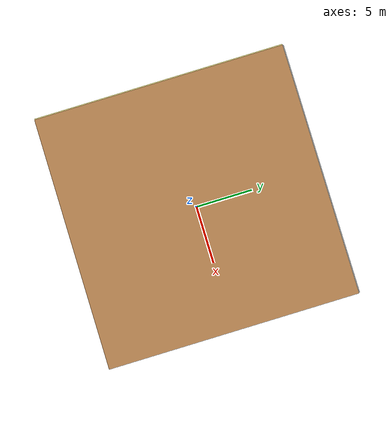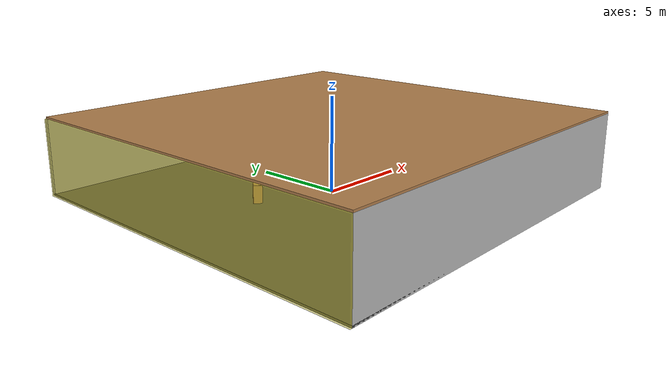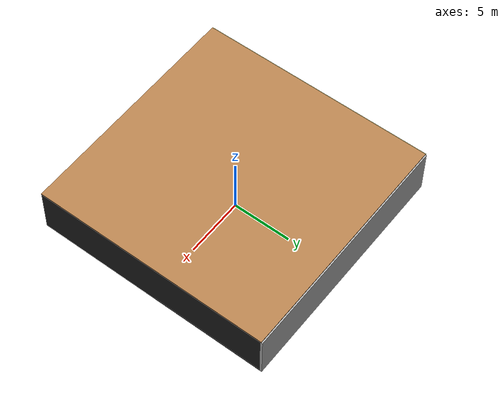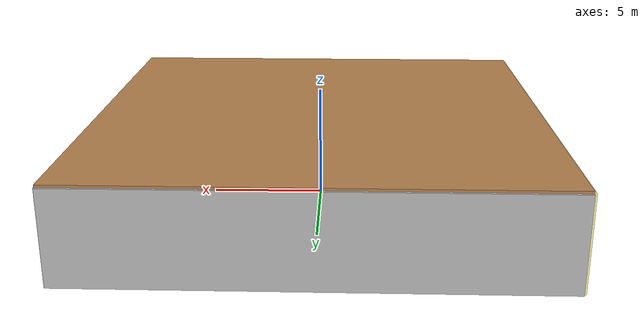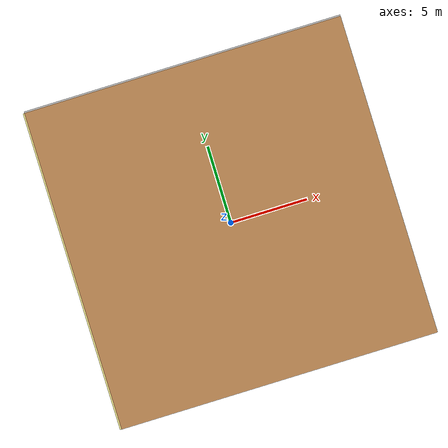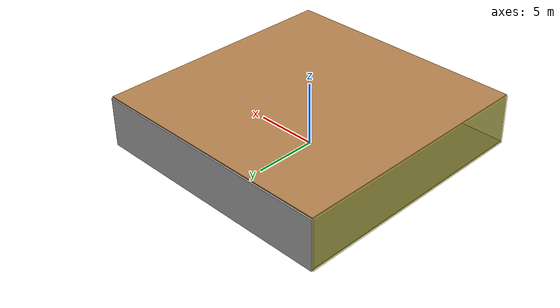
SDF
<sdf version="1.4">
 <world name="default">
  <physics type="ode">
   <max_step_size>0.001</max_step_size>
   <real_time_factor>1</real_time_factor>
   <real_time_update_rate>1000</real_time_update_rate>
   <gravity>0 0 -9.8</gravity>
  </physics>
  <scene><ambient>0.4 0.4 0.4 1</ambient><background>0.7 0.7 0.7 1</background><shadows>1</shadows></scene>
  <model name="Surrounding">
   <static>1</static>
   <link name="Ceiling">
    <collision name="Ceiling_Collision"><geometry><box><size>20 20 0.1</size></box></geometry></collision>
    <visual name="Ceiling_Visual">
     <geometry><box><size>20 20 0.1</size></box></geometry>
     <material>
      <script><uri>file://media/materials/scripts/gazebo.material</uri><name>Gazebo/Wood</name></script>
     </material>
    </visual>
    <pose>0 0 4.05 0 0 0</pose>
   </link>
   <link name="Wall_South">
    <collision name="Wall_South_Collision">
     <geometry><box><size>20 0 4</size></box></geometry>
     <pose>0 0 2 0 -0 0</pose>
    </collision>
    <visual name="Wall_South_Visual">
     <pose>0 0 2 0 -0 0</pose>
     <geometry><box><size>20 0 4</size></box></geometry>
     <material>
      <script><uri>file://media/materials/scripts/gazebo.material</uri><name>Gazebo/JointAnchor</name></script>
     </material>
    </visual>
    <velocity_decay><linear>0</linear><angular>0</angular></velocity_decay>
    <pose>0 -10 0 0 -0 0</pose>
   </link>
   <link name="Wall_East">
    <collision name="Wall_21_Collision">
     <geometry><box><size>20 0 4</size></box></geometry>
     <pose>0 0 2 0 -0 0</pose>
    </collision>
    <visual name="Wall_21_Visual">
     <pose>0 0 2 0 -0 0</pose>
     <geometry><box><size>20 0 4</size></box></geometry>
     <material>
      <script><uri>file://media/materials/scripts/gazebo.material</uri><name>Gazebo/Black</name></script>
     </material>
    </visual>
    <velocity_decay><linear>0</linear><angular>0</angular></velocity_decay>
    <pose>10 0 0 0 -0 1.5708</pose>
   </link>
   <link name="Wall_North">
    <collision name="Wall_22_Collision">
     <geometry><box><size>20 0.2 4</size></box></geometry>
     <pose>0 0 2 0 -0 0</pose>
    </collision>
    <visual name="Wall_22_Visual">
     <pose>0 0 2 0 -0 0</pose>
     <geometry><box><size>20 0.2 4</size></box></geometry>
     <material>
      <script><uri>file://media/materials/scripts/gazebo.material</uri><name>Gazebo/CloudySky</name></script>
     </material>
    </visual>
    <velocity_decay><linear>0</linear><angular>0</angular></velocity_decay>
    <pose>0 10 0 0 -0 0</pose>
   </link>
   <link name="Wall_West">
    <collision name="Wall_23_Collision">
     <geometry><box><size>20 0.2 4</size></box></geometry>
     <pose>0 0 2 0 -0 0</pose>
    </collision>
    <visual name="Wall_23_Visual">
     <pose>0 0 2 0 -0 0</pose>
     <geometry><box><size>20 0.2 4</size></box></geometry>
     <material>
      <script>
       <uri>file://media/materials/scripts/gazebo.material</uri>
       <name>Gazebo/YellowTransparent</name>
      </script>
     </material>
    </visual>
    <velocity_decay><linear>0</linear><angular>0</angular></velocity_decay>
    <pose>-10 0 0 0 0 -1.5708</pose>
   </link>
   <link name="Ground_link">
    <collision name="collision">
     <pose>0 0 .05 0 -0 0</pose>
     <geometry><box><size>20 20 0.1</size></box></geometry>
    </collision>
    <visual name="visual">
     <pose>0 0 .05 0 -0 0</pose>
     <geometry><box><size>20 20 0.1</size></box></geometry>
     <material>
      <script><uri>file://media/materials/scripts/gazebo.material</uri><name>Gazebo/DarkGrey</name></script>
     </material>
    </visual>
   </link>
   <static>1</static>
  </model>
  <spherical_coordinates>
   <surface_model>EARTH_WGS84</surface_model>
   <latitude_deg>0</latitude_deg>
   <longitude_deg>0</longitude_deg>
   <elevation>0</elevation>
   <heading_deg>0</heading_deg>
  </spherical_coordinates>
  <light name="lightball_0" type="diffuse">
   <diffuse>0.8 0.8 0.8 1</diffuse>
   <specular>0.2 0.2 0.2 1</specular>
   <attenuation>
    <range>100</range>
    <constant>0.7</constant>
    <linear>0.01</linear>
    <quadratic>0.001</quadratic>
   </attenuation>
   <direction>-0.5 0.1 -0.9</direction>
   <pose>-1.89008276957 -6.73406748685 1.27937783218 0 0 0</pose>
  </light>
  <light name="lightball_1" type="diffuse">
   <diffuse>0.8 0.8 0.8 1</diffuse>
   <specular>0.2 0.2 0.2 1</specular>
   <attenuation>
    <range>100</range>
    <constant>0.7</constant>
    <linear>0.01</linear>
    <quadratic>0.001</quadratic>
   </attenuation>
   <direction>-0.5 0.1 -0.9</direction>
   <pose>9.36551759505 -8.85146435884 3.43177662121 0 0 0</pose>
  </light>
  <light name="lightball_2" type="diffuse">
   <diffuse>0.8 0.8 0.8 1</diffuse>
   <specular>0.2 0.2 0.2 1</specular>
   <attenuation>
    <range>100</range>
    <constant>0.7</constant>
    <linear>0.01</linear>
    <quadratic>0.001</quadratic>
   </attenuation>
   <direction>-0.5 0.1 -0.9</direction>
   <pose>0.978074464316 -1.79662574742 1.26339397083 0 0 0</pose>
  </light>
  <light name="lightball_3" type="diffuse">
   <diffuse>0.8 0.8 0.8 1</diffuse>
   <specular>0.2 0.2 0.2 1</specular>
   <attenuation>
    <range>100</range>
    <constant>0.7</constant>
    <linear>0.01</linear>
    <quadratic>0.001</quadratic>
   </attenuation>
   <direction>-0.5 0.1 -0.9</direction>
   <pose>9.45170373861 1.54807877257 2.28567388362 0 0 0</pose>
  </light>
  <light name="lightball_4" type="diffuse">
   <diffuse>0.8 0.8 0.8 1</diffuse>
   <specular>0.2 0.2 0.2 1</specular>
   <attenuation>
    <range>100</range>
    <constant>0.7</constant>
    <linear>0.01</linear>
    <quadratic>0.001</quadratic>
   </attenuation>
   <direction>-0.5 0.1 -0.9</direction>
   <pose>3.18269772085 -2.76718053828 0.968673262499 0 0 0</pose>
  </light>
  <light name="lightball_5" type="diffuse">
   <diffuse>0.8 0.8 0.8 1</diffuse>
   <specular>0.2 0.2 0.2 1</specular>
   <attenuation>
    <range>100</range>
    <constant>0.7</constant>
    <linear>0.01</linear>
    <quadratic>0.001</quadratic>
   </attenuation>
   <direction>-0.5 0.1 -0.9</direction>
   <pose>-6.22816107207 9.92713232974 3.82777842407 0 0 0</pose>
  </light>
  <light name="lightball_6" type="diffuse">
   <diffuse>0.8 0.8 0.8 1</diffuse>
   <specular>0.2 0.2 0.2 1</specular>
   <attenuation>
    <range>100</range>
    <constant>0.7</constant>
    <linear>0.01</linear>
    <quadratic>0.001</quadratic>
   </attenuation>
   <direction>-0.5 0.1 -0.9</direction>
   <pose>3.2920012993 -8.75740707045 2.57424038401 0 0 0</pose>
  </light>
  <light name="lightball_7" type="diffuse">
   <diffuse>0.8 0.8 0.8 1</diffuse>
   <specular>0.2 0.2 0.2 1</specular>
   <attenuation>
    <range>100</range>
    <constant>0.7</constant>
    <linear>0.01</linear>
    <quadratic>0.001</quadratic>
   </attenuation>
   <direction>-0.5 0.1 -0.9</direction>
   <pose>9.44079648474 -9.12242824192 2.18262780063 0 0 0</pose>
  </light>
  <light name="lightball_8" type="diffuse">
   <diffuse>0.8 0.8 0.8 1</diffuse>
   <specular>0.2 0.2 0.2 1</specular>
   <attenuation>
    <range>100</range>
    <constant>0.7</constant>
    <linear>0.01</linear>
    <quadratic>0.001</quadratic>
   </attenuation>
   <direction>-0.5 0.1 -0.9</direction>
   <pose>-1.36450674434 1.75408461591 2.33537628126 0 0 0</pose>
  </light>
  <light name="lightball_9" type="diffuse">
   <diffuse>0.8 0.8 0.8 1</diffuse>
   <specular>0.2 0.2 0.2 1</specular>
   <attenuation>
    <range>100</range>
    <constant>0.7</constant>
    <linear>0.01</linear>
    <quadratic>0.001</quadratic>
   </attenuation>
   <direction>-0.5 0.1 -0.9</direction>
   <pose>0.0675951665378 -4.49362266165 1.38966573854 0 0 0</pose>
  </light>
  <light name="lightball_10" type="diffuse">
   <diffuse>0.8 0.8 0.8 1</diffuse>
   <specular>0.2 0.2 0.2 1</specular>
   <attenuation>
    <range>100</range>
    <constant>0.7</constant>
    <linear>0.01</linear>
    <quadratic>0.001</quadratic>
   </attenuation>
   <direction>-0.5 0.1 -0.9</direction>
   <pose>2.51840495846 3.01086690709 2.2090465211 0 0 0</pose>
  </light>
  <include><uri>model://cabinet</uri><pose>-3.86044634718 1.40946562135 0 0 0 2.44024315292</pose></include>
  <include><uri>model://table</uri><pose>1.9368201 -1.58531481264 0 0 0 2.55614407157</pose></include>
  <include><uri>model://cabinet</uri><pose>4.74826867251 0.686649056397 0 0 0 0.540882494785</pose></include>
 </world>
</sdf>

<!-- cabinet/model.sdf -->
<sdf version="1.5">
  <model name="cabinet">
    <static>true</static>
    <link name="cabinet_bottom_plate">
      <inertial>
        <pose>0 0 -1 0 0 0</pose>
        <inertia>
          <ixx>2.050000</ixx>
          <ixy>0</ixy>
          <ixz>0</ixz>
          <iyy>2.050000</iyy>
          <iyz>0</iyz>
          <izz>2.050000</izz>
        </inertia>
        <mass>25.000000</mass>
      </inertial>
      <collision name="cabinet_bottom_plate_geom">
        <pose>0 0 0.010000 0 0 0</pose>
        <geometry>
          <box>
            <size>0.450000 0.450000 0.020000</size>
          </box>
        </geometry>
      </collision>
      <visual name="cabinet_bottom_plate_geom_visual">
        <pose>0 0 0.010000 0 0 0</pose>
        <geometry>
          <box>
            <size>0.450000 0.450000 0.020000</size>
          </box>
        </geometry>
        <material>
          <script>
            <uri>model://media/materials/scripts/gazebo.material</uri>
            <name>Gazebo/Wood</name>
          </script>
        </material>
      </visual>
      <collision name="cabinet_bottom_plate_geom_cabinet_back_plate">
        <pose>0.235000 0 0.510000 0 0 0</pose>
        <geometry>
          <box>
            <size>0.020000 0.450000 1.020000</size>
          </box>
        </geometry>
      </collision>
      <visual name="cabinet_bottom_plate_geom_cabinet_back_plate_visual">
        <pose>0.235000 0 0.510000 0 0 0</pose>
        <geometry>
          <box>
            <size>0.020000 0.450000 1.020000</size>
          </box>
        </geometry>
        <material>
          <script>
            <uri>model://media/materials/scripts/gazebo.material</uri>
            <name>Gazebo/Wood</name>
          </script>
        </material>
      </visual>
      <collision name="cabinet_bottom_plate_geom_cabinet_left_plate">
        <pose>0 0.235000 0.510000 0 0 0</pose>
        <geometry>
          <box>
            <size>0.450000 0.020000 1.020000</size>
          </box>
        </geometry>
      </collision>
      <visual name="cabinet_bottom_plate_geom_cabinet_left_plate_visual">
        <pose>0 0.235000 0.510000 0 0 0</pose>
        <geometry>
          <box>
            <size>0.450000 0.020000 1.020000</size>
          </box>
        </geometry>
        <material>
          <script>
            <uri>model://media/materials/scripts/gazebo.material</uri>
            <name>Gazebo/Wood</name>
          </script>
        </material>
      </visual>
      <collision name="cabinet_bottom_plate_geom_cabinet_middle_plate">
        <pose>0 0 0.510000 0 0 0</pose>
        <geometry>
          <box>
            <size>0.450000 0.450000 0.020000</size>
          </box>
        </geometry>
      </collision>
      <visual name="cabinet_bottom_plate_geom_cabinet_middle_plate_visual">
        <pose>0 0 0.510000 0 0 0</pose>
        <geometry>
          <box>
            <size>0.450000 0.450000 0.020000</size>
          </box>
        </geometry>
        <material>
          <script>
            <uri>model://media/materials/scripts/gazebo.material</uri>
            <name>Gazebo/Wood</name>
          </script>
        </material>
      </visual>
      <collision name="cabinet_bottom_plate_geom_cabinet_right_plate">
        <pose>0 -0.235000 0.510000 0 0 0</pose>
        <geometry>
          <box>
            <size>0.450000 0.020000 1.020000</size>
          </box>
        </geometry>
      </collision>
      <visual name="cabinet_bottom_plate_geom_cabinet_right_plate_visual">
        <pose>0 -0.235000 0.510000 0 0 0</pose>
        <geometry>
          <box>
            <size>0.450000 0.020000 1.020000</size>
          </box>
        </geometry>
        <material>
          <script>
            <uri>model://media/materials/scripts/gazebo.material</uri>
            <name>Gazebo/Wood</name>
          </script>
        </material>
      </visual>
      <collision name="cabinet_bottom_plate_geom_cabinet_top_plate">
        <pose>0 0 1.010000 0 0 0</pose>
        <geometry>
          <box>
            <size>0.450000 0.450000 0.020000</size>
          </box>
        </geometry>
      </collision>
      <visual name="cabinet_bottom_plate_geom_cabinet_top_plate_visual">
        <pose>0 0 1.010000 0 0 0</pose>
        <geometry>
          <box>
            <size>0.450000 0.450000 0.020000</size>
          </box>
        </geometry>
        <material>
          <script>
            <uri>model://media/materials/scripts/gazebo.material</uri>
            <name>Gazebo/Wood</name>
          </script>
        </material>
      </visual>
    </link>
  </model>
</sdf>

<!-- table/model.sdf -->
<sdf version="1.5">
  <model name="table">
    <static>true</static>
    <link name="link">
      <collision name="surface">
        <pose>0 0 1.0 0 0 0</pose>
        <geometry>
          <box>
            <size>1.5 0.8 0.03</size>
          </box>
        </geometry>
        <surface>
          <friction>
            <ode>
              <mu>0.6</mu>
              <mu2>0.6</mu2>
            </ode>
          </friction>
        </surface>
      </collision>
      <visual name="visual1">
        <pose>0 0 1.0 0 0 0</pose>
        <geometry>
          <box>
            <size>1.5 0.8 0.03</size>
          </box>
        </geometry>
        <material>
          <script>
            <uri>model://media/materials/scripts/gazebo.material</uri>
            <name>Gazebo/Wood</name>
          </script>
        </material>
      </visual>
      <collision name="front_left_leg">
        <pose>0.68 0.38 0.5 0 0 0</pose>
        <geometry>
          <cylinder>
            <radius>0.02</radius>
            <length>1.0</length>
          </cylinder>
        </geometry>
      </collision>
      <visual name="front_left_leg">
        <pose>0.68 0.38 0.5 0 0 0</pose>
        <geometry>
          <cylinder>
            <radius>0.02</radius>
            <length>1.0</length>
          </cylinder>
        </geometry>
        <material>
          <script>
            <uri>model://media/materials/scripts/gazebo.material</uri>
            <name>Gazebo/Grey</name>
          </script>
        </material>
      </visual>
      <collision name="front_right_leg">
        <pose>0.68 -0.38 0.5 0 0 0</pose>
        <geometry>
          <cylinder>
            <radius>0.02</radius>
            <length>1.0</length>
          </cylinder>
        </geometry>
      </collision>
      <visual name="front_right_leg">
        <pose>0.68 -0.38 0.5 0 0 0</pose>
        <geometry>
          <cylinder>
            <radius>0.02</radius>
            <length>1.0</length>
          </cylinder>
        </geometry>
        <material>
          <script>
            <uri>model://media/materials/scripts/gazebo.material</uri>
            <name>Gazebo/Grey</name>
          </script>
        </material>
      </visual>
      <collision name="back_right_leg">
        <pose>-0.68 -0.38 0.5 0 0 0</pose>
        <geometry>
          <cylinder>
            <radius>0.02</radius>
            <length>1.0</length>
          </cylinder>
        </geometry>
      </collision>
      <visual name="back_right_leg">
        <pose>-0.68 -0.38 0.5 0 0 0</pose>
        <geometry>
          <cylinder>
            <radius>0.02</radius>
            <length>1.0</length>
          </cylinder>
        </geometry>
        <material>
          <script>
            <uri>model://media/materials/scripts/gazebo.material</uri>
            <name>Gazebo/Grey</name>
          </script>
        </material>
      </visual>
      <collision name="back_left_leg">
        <pose>-0.68 0.38 0.5 0 0 0</pose>
        <geometry>
          <cylinder>
            <radius>0.02</radius>
            <length>1.0</length>
          </cylinder>
        </geometry>
      </collision>
      <visual name="back_left_leg">
        <pose>-0.68 0.38 0.5 0 0 0</pose>
        <geometry>
          <cylinder>
            <radius>0.02</radius>
            <length>1.0</length>
          </cylinder>
        </geometry>
        <material>
          <script>
            <uri>model://media/materials/scripts/gazebo.material</uri>
            <name>Gazebo/Grey</name>
          </script>
        </material>
      </visual>
    </link>
  </model>
</sdf>
